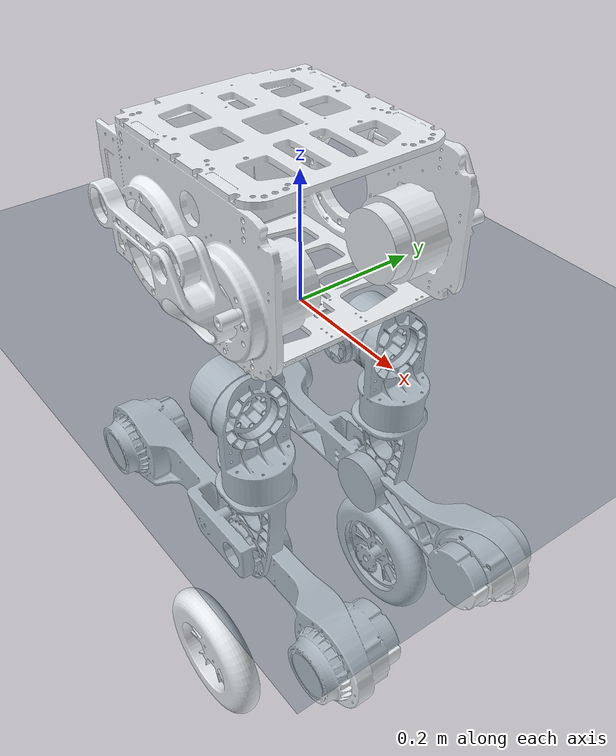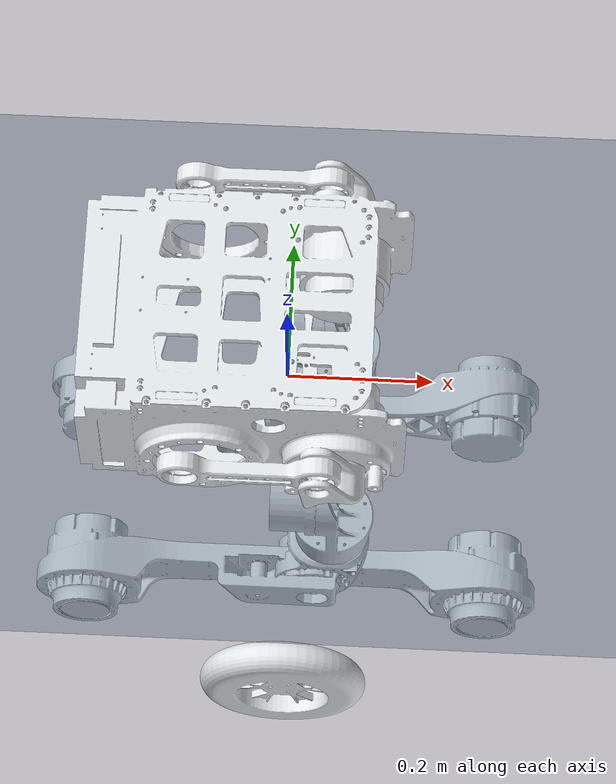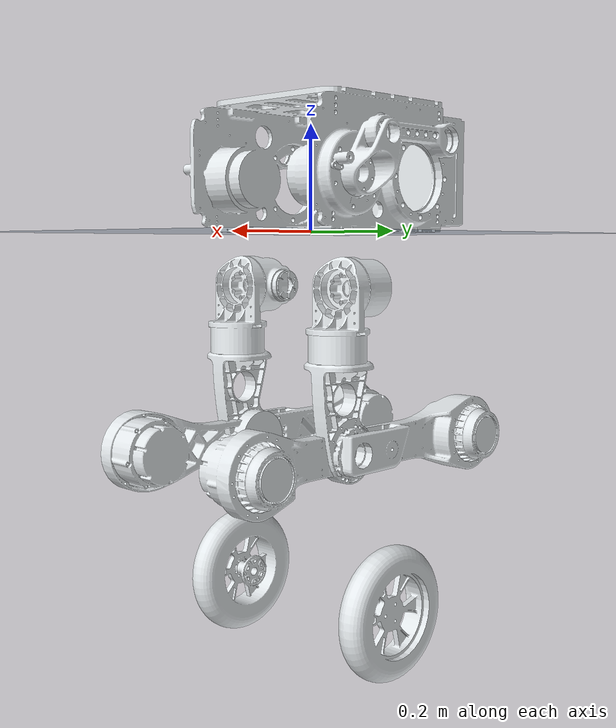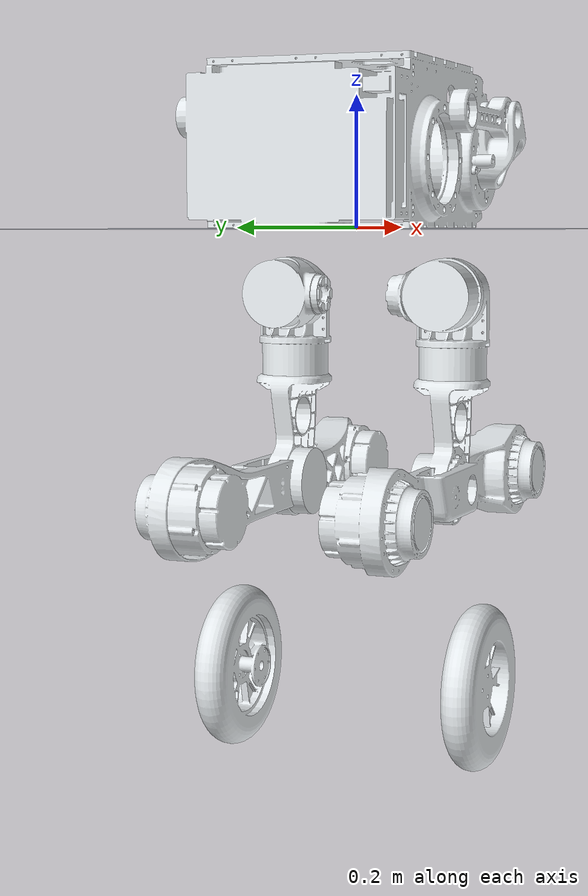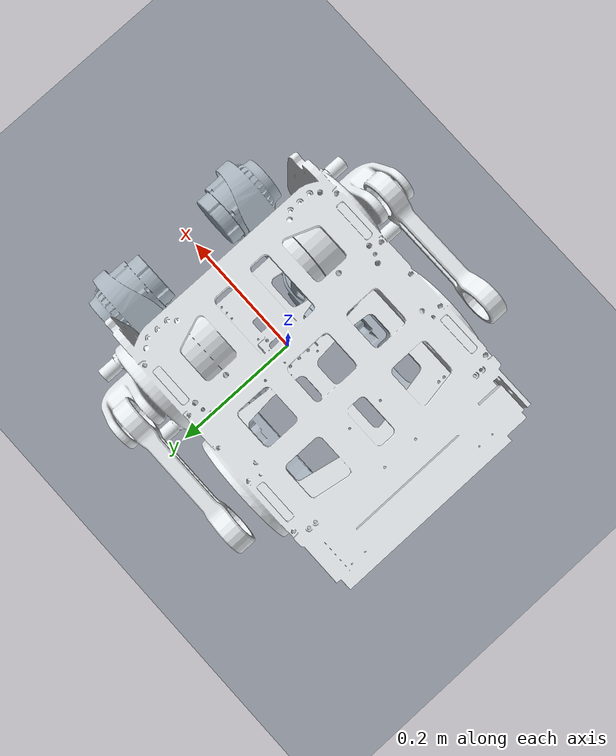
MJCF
<mujoco model="l4aurdf20241119">
  <compiler angle="radian" meshdir="../meshes/"/>

<option timestep="0.002" integrator="RK4">
  </option>
  <default>
    <light castshadow="false" diffuse="1 1 1" />
    <camera fovy="60" />
    <default class="visual">
      <geom contype="0" conaffinity="0" group="1" type="mesh" rgba="0.9 0.9 0.9 1.0" />
    </default>
    <default class="collision">
      <geom contype="1" conaffinity="1" friction="1.0 0.8 0.8" rgba="0.9 0.3 0.4 0" margin="0.001" group="0" />
    </default>
    <joint damping="0.01" armature="0.01" frictionloss="0.5" />
  </default>

<asset>
    <texture name="grid" type="2d" builtin="checker" width="512" height="512" rgb1=".1 .2 .3" rgb2=".2 .3 .4" />
    <material name="grid" texture="grid" texrepeat="1 1" texuniform="true" reflectance=".2" />
  </asset>

  <asset>
    <mesh name="base_link" file="base_link.STL"/>
    <mesh name="left_hip_pitch_link" file="left_hip_pitch_link.STL"/>
    <mesh name="left_hip_roll_link" file="left_hip_roll_link.STL"/>
    <mesh name="left_hip_yaw_link" file="left_hip_yaw_link.STL"/>
    <mesh name="left_knee_link" file="left_knee_link.STL"/>
    <mesh name="left_wheel_link" file="left_wheel_link.STL"/>
    <mesh name="right_hip_pitch_link" file="right_hip_pitch_link.STL"/>
    <mesh name="right_hip_roll_link" file="right_hip_roll_link.STL"/>
    <mesh name="right_hip_yaw_link" file="right_hip_yaw_link.STL"/>
    <mesh name="right_knee_link" file="right_knee_link.STL"/>
    <mesh name="right_wheel_link" file="right_wheel_link.STL"/>
  </asset>

  <worldbody>
     <light pos="5 0 30" />
    <geom name="plane" type="plane" size="20 20 .01" material="grid" />
    <body name="base_link">
      <inertial pos="0.013296 -9.5e-06 0.11099" quat="0.999995 0.00298087 -0.00140413 2.53468e-05" mass="15.675" diaginertia="0.373112 0.359019 0.0964075"/>
      <joint name="base_joint" type="free" limited="false" actuatorfrclimited="false"/>
      <geom type="mesh" contype="0" conaffinity="0" group="1" density="0" rgba="0.89804 0.91765 0.92941 1" mesh="base_link"/>
      <geom type="mesh" rgba="0.89804 0.91765 0.92941 1" mesh="base_link"/>
      <site name="imu" quat="1 0 0 0" />
      <body name="left_hip_pitch_link" pos="0.008 0.0575 -0.10235">
        <inertial pos="0.010312 0.06458 1.11e-05" quat="0.705963 0.705695 0.0423451 0.0426358" mass="1.3888" diaginertia="0.0029801 0.002375 0.0016946"/>
        <joint name="left_hip_pitch_joint" pos="0 0 0" axis="0 1 0" range="-1.22 2.18" actuatorfrcrange="-85 85"/>
        <geom type="mesh" contype="0" conaffinity="0" group="1" density="0" rgba="0.89804 0.91765 0.92941 1" mesh="left_hip_pitch_link"/>
        <geom type="mesh" rgba="0.89804 0.91765 0.92941 1" mesh="left_hip_pitch_link"/>
        <body name="left_hip_roll_link" pos="0.028 0.075 0">
          <inertial pos="0.031039 -0.000471 -0.076821" quat="0.997472 -0.00701474 0.0688348 -0.0162159" mass="1.4194" diaginertia="0.00429215 0.00394575 0.0022304"/>
          <joint name="left_hip_roll_joint" pos="0 0 0" axis="1 0 0" range="-0.17 1.57" actuatorfrcrange="-85 85"/>
          <geom type="mesh" contype="0" conaffinity="0" group="1" density="0" rgba="0.89804 0.91765 0.92941 1" mesh="left_hip_roll_link"/>
          <geom type="mesh" rgba="0.89804 0.91765 0.92941 1" mesh="left_hip_roll_link"/>
          <body name="left_hip_yaw_link" pos="0.0335 0 -0.131">
            <inertial pos="-0.017472 -0.0040396 -0.12624" quat="0.744903 -0.0359267 -0.0718936 0.662314" mass="1.7828" diaginertia="0.0100982 0.00899121 0.00247315"/>
            <joint name="left_hip_yaw_joint" pos="0 0 0" axis="0 0 1" range="-2.53 2.53" actuatorfrcrange="-85 85"/>
            <geom type="mesh" contype="0" conaffinity="0" group="1" density="0" rgba="0.89804 0.91765 0.92941 1" mesh="left_hip_yaw_link"/>
            <geom type="mesh" rgba="0.89804 0.91765 0.92941 1" mesh="left_hip_yaw_link"/>
            <body name="left_knee_link" pos="-0.025777 0.0095 -0.16687">
              <inertial pos="-0.017483 -0.0001466 -0.18912" quat="0.856288 -0.0271597 -0.0979894 0.506391" mass="1.4194" diaginertia="0.0225026 0.0215136 0.00116995"/>
              <joint name="left_knee_joint" pos="0 0 0" axis="0 1 0" range="-0.17 2.36" actuatorfrcrange="-85 85"/>
              <geom type="mesh" contype="0" conaffinity="0" group="1" density="0" rgba="0.89804 0.91765 0.92941 1" mesh="left_knee_link"/>
              <geom type="mesh" rgba="0.89804 0.91765 0.92941 1" mesh="left_knee_link"/>
              <body name="left_wheel_link" pos="-0.042581 0.022 -0.29696">
                <inertial pos="2.99e-05 0.025928 3.45e-05" quat="0.680245 -0.19323 -0.193235 0.680139" mass="0.8466" diaginertia="0.0043559 0.00224055 0.00223965"/>
                <joint name="left_wheel_joint" pos="0 0 0" axis="0 1 0" range="-999999 999999" actuatorfrcrange="-460 460"/>
                <geom type="mesh" contype="0" conaffinity="0" group="1" density="0" rgba="0.89804 0.91765 0.92941 1" mesh="left_wheel_link"/>
                <geom type="mesh" rgba="0.89804 0.91765 0.92941 1" mesh="left_wheel_link"/>
              </body>
            </body>
          </body>
        </body>
      </body>
      <body name="right_hip_pitch_link" pos="0.008 -0.0575 -0.10235">
        <inertial pos="0.010321 -0.064513 2.79e-05" quat="0.707506 0.704107 -0.0424859 -0.0431578" mass="1.3888" diaginertia="0.00297733 0.00237042 0.00169575"/>
        <joint name="right_hip_pitch_joint" pos="0 0 0" axis="0 1 0" range="-1.22 2.18" actuatorfrcrange="-85 85"/>
        <geom type="mesh" contype="0" conaffinity="0" group="1" density="0" rgba="0.89804 0.91765 0.92941 1" mesh="right_hip_pitch_link"/>
        <geom type="mesh" rgba="0.89804 0.91765 0.92941 1" mesh="right_hip_pitch_link"/>
        <body name="right_hip_roll_link" pos="0.028 -0.075 0">
          <inertial pos="0.03105 0.0004947 -0.076836" quat="0.997458 0.00730603 0.0689013 0.0166643" mass="1.4196" diaginertia="0.00428857 0.00394335 0.00223108"/>
          <joint name="right_hip_roll_joint" pos="0 0 0" axis="1 0 0" range="-1.57 0.17" actuatorfrcrange="-85 85"/>
          <geom type="mesh" contype="0" conaffinity="0" group="1" density="0" rgba="0.89804 0.91765 0.92941 1" mesh="right_hip_roll_link"/>
          <geom type="mesh" rgba="0.89804 0.91765 0.92941 1" mesh="right_hip_roll_link"/>
          <body name="right_hip_yaw_link" pos="0.0335 0 -0.131">
            <inertial pos="-0.01747 0.0040037 -0.12619" quat="0.661445 -0.0718095 -0.0356361 0.745697" mass="1.7851" diaginertia="0.0101029 0.00900129 0.00247003"/>
            <joint name="right_hip_yaw_joint" pos="0 0 0" axis="0 0 1" range="-2.53 2.53" actuatorfrcrange="-85 85"/>
            <geom type="mesh" contype="0" conaffinity="0" group="1" density="0" rgba="0.89804 0.91765 0.92941 1" mesh="right_hip_yaw_link"/>
            <geom type="mesh" rgba="0.89804 0.91765 0.92941 1" mesh="right_hip_yaw_link"/>
            <body name="right_knee_link" pos="-0.025777 -0.0095 -0.16687">
              <inertial pos="-0.01748 0.0001465 -0.18911" quat="0.506296 -0.0979694 -0.0271294 0.856347" mass="1.4194" diaginertia="0.0225008 0.0215119 0.00116986"/>
              <joint name="right_knee_joint" pos="0 0 0" axis="0 1 0" range="-0.17 2.36" actuatorfrcrange="-85 85"/>
              <geom type="mesh" contype="0" conaffinity="0" group="1" density="0" rgba="0.89804 0.91765 0.92941 1" mesh="right_knee_link"/>
              <geom type="mesh" rgba="0.89804 0.91765 0.92941 1" mesh="right_knee_link"/>
              <body name="right_wheel_link" pos="-0.042581 -0.022 -0.29696">
                <inertial pos="-2.91e-05 -0.025936 5.3e-06" quat="0.322208 0.629448 0.629404 0.322223" mass="0.845556" diaginertia="0.0043554 0.00223982 0.00223918"/>
                <joint name="right_wheel_joint" pos="0 0 0" axis="0 1 0" range="-999999 999999" actuatorfrcrange="-460 460"/>
                <geom type="mesh" contype="0" conaffinity="0" group="1" density="0" rgba="0.89804 0.91765 0.92941 1" mesh="right_wheel_link"/>
                <geom type="mesh" rgba="0.89804 0.91765 0.92941 1" mesh="right_wheel_link"/>
              </body>
            </body>
          </body>
        </body>
      </body>
    </body>
  </worldbody>
<actuator>
    <motor joint="left_hip_pitch_joint" name="left_hip_pitch_joint" ctrllimited="true" ctrlrange="-200 200" />
    <motor joint="left_hip_roll_joint" name="left_hip_roll_joint" ctrllimited="true" ctrlrange="-200 200" />
    <motor joint="left_hip_yaw_joint" name="left_hip_yaw_joint" ctrllimited="true" ctrlrange="-200 200" />
    <motor joint="left_knee_joint" name="left_knee_joint" ctrllimited="true" ctrlrange="-200 200" />
    <motor joint="left_wheel_joint" name="left_wheel_joint" ctrllimited="true" ctrlrange="-200 200" />
    <motor joint="right_hip_pitch_joint" name="right_hip_pitch_joint" ctrllimited="true" ctrlrange="-200 200" />
    <motor joint="right_hip_roll_joint" name="right_hip_roll_joint" ctrllimited="true" ctrlrange="-200 200" />
    <motor joint="right_hip_yaw_joint" name="right_hip_yaw_joint" ctrllimited="true" ctrlrange="-200 200" />
    <motor joint="right_knee_joint" name="right_knee_joint" ctrllimited="true" ctrlrange="-200 200" />
    <motor joint="right_wheel_joint" name="right_wheel_joint" ctrllimited="true" ctrlrange="-200 200" />
  </actuator>

  <sensor>
    <actuatorpos name="left_hip_pitch_joint_p" actuator="left_hip_pitch_joint" />
    <actuatorvel name="left_hip_pitch_joint_v" actuator="left_hip_pitch_joint" />
    <actuatorfrc name="left_hip_pitch_joint_f" actuator="left_hip_pitch_joint" noise="0.001" />
    <actuatorpos name="left_hip_roll_joint_p" actuator="left_hip_roll_joint" />
    <actuatorvel name="left_hip_roll_joint_v" actuator="left_hip_roll_joint" />
    <actuatorfrc name="left_hip_roll_joint_f" actuator="left_hip_roll_joint" noise="0.001" />
    <actuatorpos name="left_hip_yaw_joint_p" actuator="left_hip_yaw_joint" />
    <actuatorvel name="left_hip_yaw_joint_v" actuator="left_hip_yaw_joint" />
    <actuatorfrc name="left_hip_yaw_joint_f" actuator="left_hip_yaw_joint" noise="0.001" />
    <actuatorpos name="left_knee_joint_p" actuator="left_knee_joint" />
    <actuatorvel name="left_knee_joint_v" actuator="left_knee_joint" />
    <actuatorfrc name="left_knee_joint_f" actuator="left_knee_joint" noise="0.001" />
    <actuatorpos name="left_wheel_joint_p" actuator="left_wheel_joint" />
    <actuatorvel name="left_wheel_joint_v" actuator="left_wheel_joint" />
    <actuatorfrc name="left_wheel_joint_f" actuator="left_wheel_joint" noise="0.001" />

    <actuatorpos name="right_hip_pitch_joint_p" actuator="right_hip_pitch_joint" />
    <actuatorvel name="right_hip_pitch_joint_v" actuator="right_hip_pitch_joint" />
    <actuatorfrc name="right_hip_pitch_joint_f" actuator="right_hip_pitch_joint" noise="0.001" />
    <actuatorpos name="right_hip_roll_joint_p" actuator="right_hip_roll_joint" />
    <actuatorvel name="right_hip_roll_joint_v" actuator="right_hip_roll_joint" />
    <actuatorfrc name="right_hip_roll_joint_f" actuator="right_hip_roll_joint" noise="0.001" />
    <actuatorpos name="right_hip_yaw_joint_p" actuator="right_hip_yaw_joint" />
    <actuatorvel name="right_hip_yaw_joint_v" actuator="right_hip_yaw_joint" />
    <actuatorfrc name="right_hip_yaw_joint_f" actuator="right_hip_yaw_joint" noise="0.001" />
    <actuatorpos name="right_knee_joint_p" actuator="right_knee_joint" />
    <actuatorvel name="right_knee_joint_v" actuator="right_knee_joint" />
    <actuatorfrc name="right_knee_joint_f" actuator="right_knee_joint" noise="0.001" />
    <actuatorpos name="right_wheel_joint_p" actuator="right_wheel_joint" />
    <actuatorvel name="right_wheel_joint_v" actuator="right_wheel_joint" />
    <actuatorfrc name="right_wheel_joint_f" actuator="right_wheel_joint" noise="0.001" />

    <framequat name='orientation' objtype='site' noise='0.001' objname='imu'/>
    <framepos name='position' objtype='site' noise='0.001' objname='imu'/>
    <gyro name='angular-velocity' site='imu' noise='0.005' cutoff='34.9'/>
    <velocimeter name='linear-velocity' site='imu' noise='0.001' cutoff='30'/>
    <accelerometer name='linear-acceleration' site='imu' noise='0.005' cutoff='157'/>
    <magnetometer name='magnetometer' site='imu'/>
  </sensor>

<contact>
    <exclude body1="base_link" body2="left_hip_pitch_link" />
    <exclude body1="base_link" body2="left_hip_roll_link" />
    <exclude body1="left_hip_pitch_link" body2="left_hip_roll_link" />
    <exclude body1="left_hip_roll_link" body2="left_hip_yaw_link" />
    <exclude body1="left_hip_yaw_link" body2="left_knee_link" />
    <exclude body1="left_knee_link" body2="left_wheel_link" />

    <exclude body1="base_link" body2="right_hip_pitch_link" />
    <exclude body1="base_link" body2="right_hip_roll_link" />
    <exclude body1="right_hip_pitch_link" body2="right_hip_roll_link" />
    <exclude body1="right_hip_roll_link" body2="right_hip_yaw_link" />
    <exclude body1="right_hip_yaw_link" body2="right_knee_link" />
    <exclude body1="right_knee_link" body2="right_wheel_link" />
  </contact>

  <keyframe>
    <key time="0"
      qpos="0 0 0.755 1 0 0 0
    -0.349 0 0 0.539 0
    -0.349 0 0 0.539 0" />
  </keyframe>

</mujoco>
